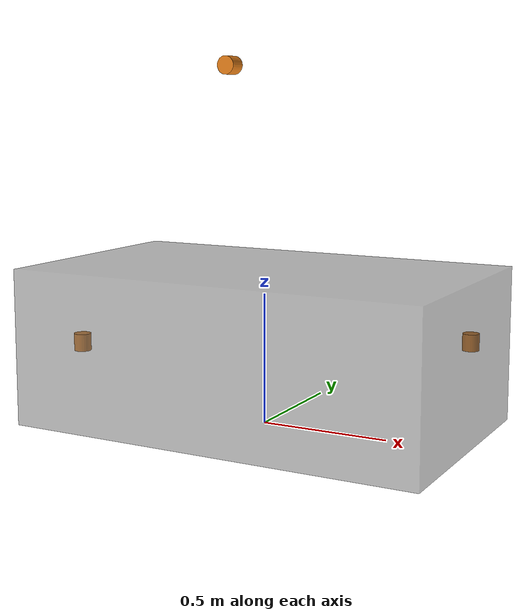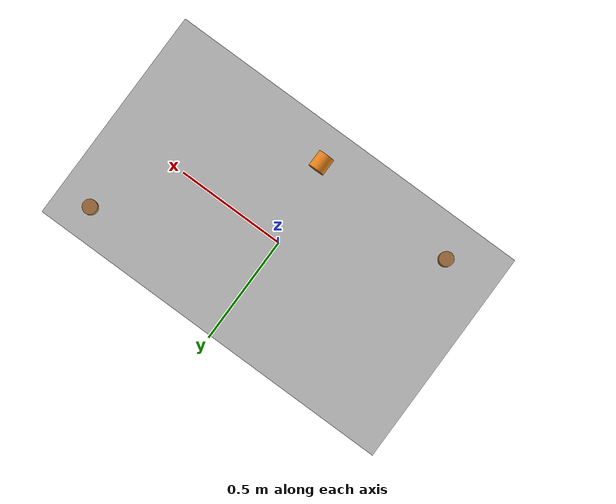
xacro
<?xml version="1.0"?>
<robot xmlns:xacro="http://www.ros.org/wiki/xacro" name="vehicle">
  <xacro:include filename="mount.xacro"/>

  <material name="grey"><color rgba="0.4 0.4 0.4 0.5"/></material>
  <material name="orange"><color rgba="0.9 0.5 0.1 1.0"/></material>

  <xacro:macro name="mid360" params="name xyz rpy">
    <link name="${name}">
      <visual>
        <geometry><cylinder radius="0.032" length="0.065"/></geometry>
        <material name="orange"/>
      </visual>
    </link>
    <joint name="livox_frame_to_${name}" type="fixed">
      <parent link="livox_frame"/>
      <child  link="${name}"/>
      <origin xyz="${xyz}" rpy="${rpy}"/>
    </joint>
  </xacro:macro>

  <!-- tf_2d.py 가 내보내는 평면화된 차량 프레임이자 지면 프레임.
       차체와 센서를 매다는 자리이고, 여기 기준 z = 지면 위 높이다. -->
  <link name="base_link">
    <visual>
      <geometry><box size="${body_length} ${body_width} ${body_height}"/></geometry>
      <origin xyz="0 0 ${body_height/2}"/>
      <material name="grey"/>
    </visual>
  </link>

  <!-- 세 라이다를 묶는 중심 프레임. front/rear 의 중점이다. -->
  <link name="livox_frame"/>
  <joint name="base_link_to_livox_frame" type="fixed">
    <parent link="base_link"/><child link="livox_frame"/>
    <origin xyz="${livox_frame_xyz}" rpy="0 0 0"/>
  </joint>

  <xacro:mid360 name="livox_top"   xyz="${top_xyz}"   rpy="${top_rpy}"/>
  <xacro:mid360 name="livox_front" xyz="${front_xyz}" rpy="${front_rpy}"/>
  <xacro:mid360 name="livox_rear"  xyz="${rear_xyz}"  rpy="${rear_rpy}"/>

  <!-- 상단 라이다 내장 IMU. FAST-LIO 의 body 프레임이 가리키는 물리적 지점과
       같은 곳이지만, 이쪽은 URDF 가 모델링한 위치다. -->
  <link name="imu_link"/>
  <joint name="livox_top_to_imu" type="fixed">
    <parent link="livox_top"/><child link="imu_link"/>
    <origin xyz="${imu_xyz}" rpy="0 0 0"/>
  </joint>

</robot>

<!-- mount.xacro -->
<!--
  장착값 한 곳. vehicle.urdf.xacro 가 읽는다.
  값을 고치면 반드시 tools/check_frames.py 로 livox_merge / fast_lio 설정과의
  정합을 확인할 것.
-->
<robot xmlns:xacro="http://www.ros.org/wiki/xacro">

  <!-- 차체 치수 (nav2 footprint 와 같은 실측값).
       body_height 는 지면에서 차체 윗면까지다. base_link 가 지면에 있으므로
       차체 상자는 base_link 위로 그대로 쌓인다. -->
  <xacro:property name="body_length" value="1.62"/>
  <xacro:property name="body_width"  value="0.952"/>
  <xacro:property name="body_height" value="0.60"/>

  <!-- 라이다 중심 프레임 (base_link=지면 기준).
       front/rear 의 중점이고, z 0.32 는 지면 위 라이다 평면 높이다. -->
  <xacro:property name="livox_frame_xyz" value="0.0485 0.005 0.32"/>

  <!-- 라이다 장착 (livox_frame 기준). front/rear 는 정의상 정확히 원점대칭이다. -->
  <xacro:property name="front_xyz" value="0.6485 0.345 0"/>
  <xacro:property name="front_rpy" value="0 0 ${pi/2}"/>

  <xacro:property name="rear_xyz"  value="-0.6485 -0.345 0"/>
  <xacro:property name="rear_rpy"  value="0 0 ${-pi/2}"/>

  <!-- top 은 옆으로 눕혀 장착. x 는 내부 IMU 가 base_link 의 x=0 에 오도록
       역산한 값이고, z(지면 기준) 만 추정치다(오차 +-0.025). -->
  <xacro:property name="top_xyz"   value="-0.0375 -0.28 1.0265"/>
  <xacro:property name="top_rpy"   value="${-pi/2} 0 ${pi}"/>

  <!-- MID-360 몸통 원점 -> 내부 IMU (Livox 공장값) -->
  <xacro:property name="imu_xyz"   value="0.011 0.02329 -0.04412"/>

  <!-- FAST-LIO 의 body(=IMU) 에서 본 base_link 는 여기 없다.
       fast_lio_localization/config/mid360.yaml 의 ref_from_body_* 를 볼 것.
       (tf_2d.py 가 파라미터로 받는다) -->

</robot>
